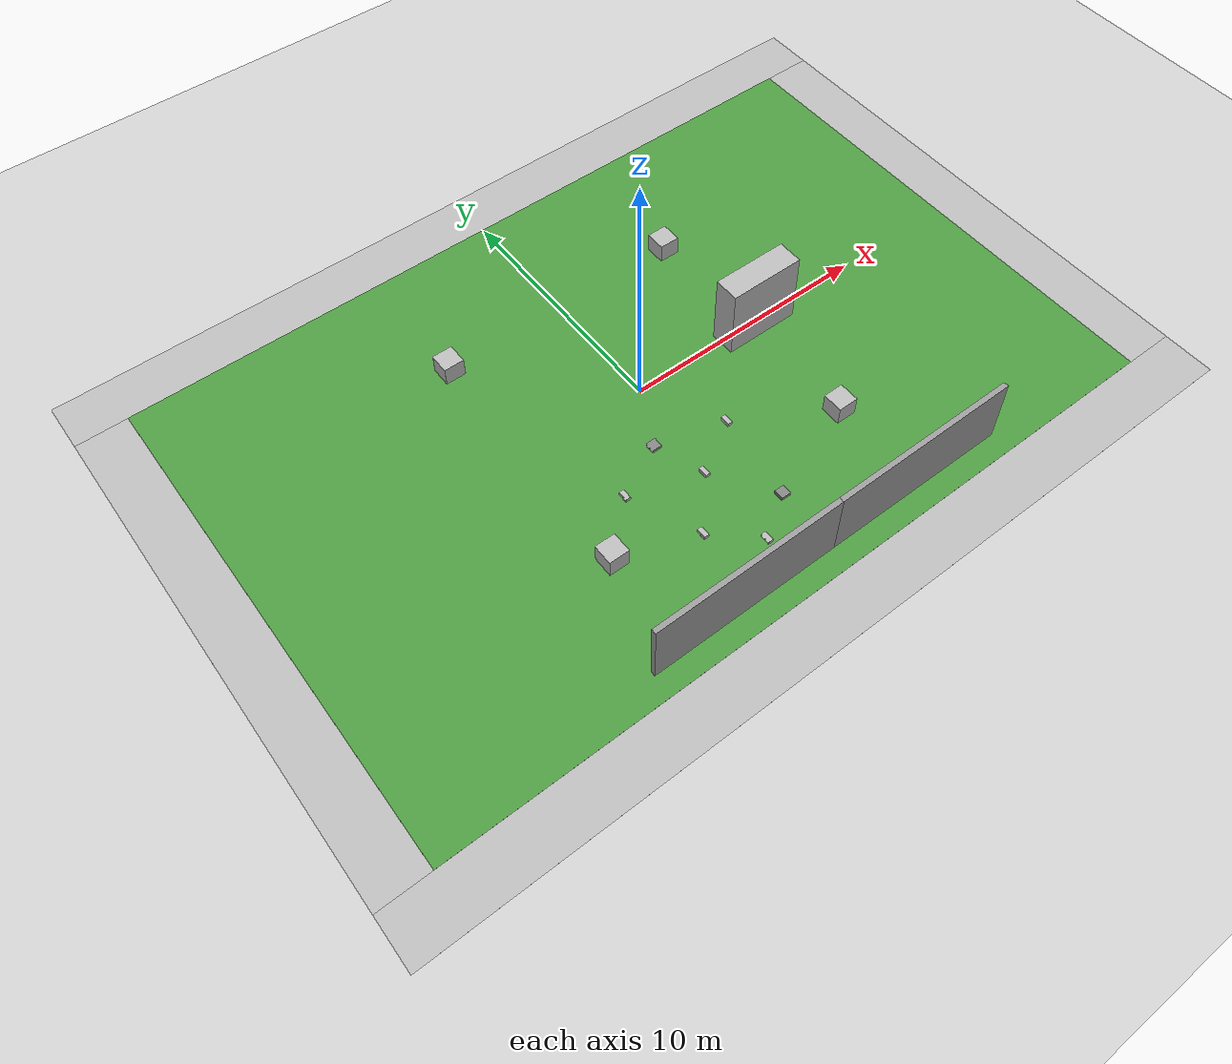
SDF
<sdf version="1.6">
 <world name="default">
  <plugin name="ardupilot_sitl_gazebo_plugin" filename="libardupilot_sitl_gazebo_plugin_rover.so">
   <UAV_MODEL>rover</UAV_MODEL>
  </plugin>
  <light name="sun" type="directional">
   <pose>0 0 10 0 -0 0</pose>
   <diffuse>0.8 0.8 0.8 1</diffuse>
   <specular>0.2 0.2 0.2 1</specular>
   <attenuation>
    <range>1000</range>
    <constant>0.9</constant>
    <linear>0.01</linear>
    <quadratic>0.001</quadratic>
   </attenuation>
   <direction>-0.5 0.1 -0.9</direction>
  </light>
  <model name="ground_plane">
   <static>1</static>
   <link name="link">
    <collision name="collision">
     <geometry><plane><normal>0 0 1</normal><size>100 100</size></plane></geometry>
     <surface><friction><ode><mu>100</mu><mu2>50</mu2></ode></friction></surface>
    </collision>
    <visual name="visual">
     <cast_shadows>0</cast_shadows>
     <geometry><plane><normal>0 0 1</normal><size>100 100</size></plane></geometry>
     <material>
      <script><uri>file://media/materials/scripts/gazebo.material</uri><name>Gazebo/Grey</name></script>
     </material>
    </visual>
   </link>
  </model>
  <gravity>0 0 -9.8</gravity>
  <magnetic_field>6e-06 2.3e-05 -4.2e-05</magnetic_field>
  <atmosphere type="adiabatic"/>
  <physics name="default_physics" default="0" type="ode">
   <max_step_size>0.001</max_step_size>
   <real_time_factor>1</real_time_factor>
   <real_time_update_rate>1000</real_time_update_rate>
  </physics>
  <scene><ambient>0.4 0.4 0.4 1</ambient><background>0.7 0.7 0.7 1</background><shadows>1</shadows></scene>
  <spherical_coordinates>
   <surface_model>EARTH_WGS84</surface_model>
   <latitude_deg>0</latitude_deg>
   <longitude_deg>0</longitude_deg>
   <elevation>0</elevation>
   <heading_deg>0</heading_deg>
  </spherical_coordinates>
  <model name="robocup_3d_field">
   <static>1</static>
   <link name="field">
    <pose>0 0 0.01 0 -0 0</pose>
    <collision name="collision">
     <geometry><plane><normal>0 0 1</normal><size>30 20</size></plane></geometry>
     <surface><friction><ode><mu>100</mu><mu2>50</mu2></ode></friction></surface>
    </collision>
    <visual name="base1">
     <pose>0 11 0.001 0 -0 0</pose>
     <cast_shadows>0</cast_shadows>
     <geometry><plane><normal>0 0 1</normal><size>34 2</size></plane></geometry>
     <material>
      <script>
       <uri>model://robocup_3Dsim_field/materials/scripts/</uri>
       <uri>model://robocup_3Dsim_field/materials/textures/</uri>
       <name>RoboCup/FieldBorder</name>
      </script>
     </material>
    </visual>
    <visual name="base2">
     <pose>0 -11 0.001 0 -0 0</pose>
     <cast_shadows>0</cast_shadows>
     <geometry><plane><normal>0 0 1</normal><size>34 2</size></plane></geometry>
     <material>
      <script>
       <uri>model://robocup_3Dsim_field/materials/scripts/</uri>
       <uri>model://robocup_3Dsim_field/materials/textures/</uri>
       <name>RoboCup/FieldBorder</name>
      </script>
     </material>
    </visual>
    <visual name="base3">
     <pose>16 0 0.001 0 -0 0</pose>
     <cast_shadows>0</cast_shadows>
     <geometry><plane><normal>0 0 1</normal><size>2 20</size></plane></geometry>
     <material>
      <script>
       <uri>model://robocup_3Dsim_field/materials/scripts/</uri>
       <uri>model://robocup_3Dsim_field/materials/textures/</uri>
       <name>RoboCup/FieldBorder</name>
      </script>
     </material>
    </visual>
    <visual name="base4">
     <pose>-16 0 0.001 0 -0 0</pose>
     <cast_shadows>0</cast_shadows>
     <geometry><plane><normal>0 0 1</normal><size>2 20</size></plane></geometry>
     <material>
      <script>
       <uri>model://robocup_3Dsim_field/materials/scripts/</uri>
       <uri>model://robocup_3Dsim_field/materials/textures/</uri>
       <name>RoboCup/FieldBorder</name>
      </script>
     </material>
    </visual>
    <visual name="carpet">
     <cast_shadows>0</cast_shadows>
     <geometry><plane><normal>0 0 1</normal><size>30 20</size></plane></geometry>
     <material>
      <script>
       <uri>model://robocup_3Dsim_field/materials/scripts/</uri>
       <uri>model://robocup_3Dsim_field/materials/textures/</uri>
       <name>RoboCup/Grass</name>
      </script>
     </material>
    </visual>
   </link>
   <pose>-0.031698 0.111229 0 0 -0 0</pose>
  </model>
  <model name="number1">
   <pose>4.9327 4.89859 0.4 0 -0 0</pose>
   <static>1</static>
   <link name="number1::link">
    <visual name="visual">
     <geometry><mesh><uri>model://number1/meshes/number.dae</uri></mesh></geometry>
     <material>
      <script>
       <uri>model://number1/materials/scripts</uri>
       <uri>model://number1/materials/textures</uri>
       <name>Number/One</name>
      </script>
     </material>
    </visual>
   </link>
  </model>
  <model name="number2">
   <pose>5.02532 -4.98398 0.4 0 -0 0</pose>
   <static>1</static>
   <link name="link">
    <visual name="visual">
     <geometry><mesh><uri>model://number1/meshes/number.dae</uri></mesh></geometry>
     <material>
      <script>
       <uri>model://number2/materials/scripts</uri>
       <uri>model://number2/materials/textures</uri>
       <name>Number/Two</name>
      </script>
     </material>
    </visual>
   </link>
  </model>
  <model name="number3">
   <pose>-4.99507 -4.96887 0.4 0 -0 0</pose>
   <static>1</static>
   <link name="link">
    <visual name="visual">
     <geometry><mesh><uri>model://number1/meshes/number.dae</uri></mesh></geometry>
     <material>
      <script>
       <uri>model://number3/materials/scripts</uri>
       <uri>model://number3/materials/textures</uri>
       <name>Number/Three</name>
      </script>
     </material>
    </visual>
   </link>
  </model>
  <model name="number4">
   <pose>-4.90041 4.89522 0.4 0 -0 0</pose>
   <static>1</static>
   <link name="link">
    <visual name="visual">
     <geometry><mesh><uri>model://number1/meshes/number.dae</uri></mesh></geometry>
     <material>
      <script>
       <uri>model://number4/materials/scripts</uri>
       <uri>model://number4/materials/textures</uri>
       <name>Number/Four</name>
      </script>
     </material>
    </visual>
   </link>
  </model>
  <model name="cinder_block_2">
   <link name="link">
    <inertial>
     <pose>0 0 0.071438 0 -0 0</pose>
     <mass>5</mass>
     <inertia>
      <ixx>0.06908</ixx>
      <ixy>0</ixy>
      <iyy>0.028705</iyy>
      <ixz>0</ixz>
      <iyz>0</iyz>
      <izz>0.073708</izz>
     </inertia>
    </inertial>
    <visual name="visual">
     <geometry><mesh><uri>model://cinder_block_2/meshes/cinder_block.dae</uri></mesh></geometry>
    </visual>
    <collision name="top">
     <pose>0 0 0.130175 0 -0 0</pose>
     <geometry><box><size>0.19368 0.396875 0.0254</size></box></geometry>
     <surface>
      <contact><ode><max_vel>0.1</max_vel><min_depth>0.001</min_depth></ode></contact>
      <friction><ode><mu>1</mu><mu2>1</mu2></ode></friction>
     </surface>
    </collision>
    <collision name="bottom">
     <pose>0 0 0.0127 0 -0 0</pose>
     <geometry><box><size>0.19368 0.396875 0.0254</size></box></geometry>
     <surface>
      <contact><ode><max_vel>0.1</max_vel><min_depth>0.001</min_depth></ode></contact>
      <friction><ode><mu>1</mu><mu2>1</mu2></ode></friction>
     </surface>
    </collision>
    <collision name="left">
     <pose>0 -0.185738 0.071438 0 -0 0</pose>
     <geometry><box><size>0.19368 0.0254 0.092075</size></box></geometry>
     <surface>
      <contact><ode><max_vel>0.1</max_vel><min_depth>0.001</min_depth></ode></contact>
      <friction><ode><mu>1</mu><mu2>1</mu2></ode></friction>
     </surface>
    </collision>
    <collision name="right">
     <pose>0 0.185738 0.071438 0 -0 0</pose>
     <geometry><box><size>0.19368 0.0254 0.092075</size></box></geometry>
     <surface>
      <contact><ode><max_vel>0.1</max_vel><min_depth>0.001</min_depth></ode></contact>
      <friction><ode><mu>1</mu><mu2>1</mu2></ode></friction>
     </surface>
    </collision>
    <collision name="middle">
     <pose>0 0 0.071438 0 -0 0</pose>
     <geometry><box><size>0.19368 0.0254 0.092075</size></box></geometry>
     <surface>
      <contact><ode><max_vel>0.1</max_vel><min_depth>0.001</min_depth></ode></contact>
      <friction><ode><mu>1</mu><mu2>1</mu2></ode></friction>
     </surface>
    </collision>
   </link>
   <pose>1.57757 -2.93393 0.009461 0 -0 0</pose>
  </model>
  <model name="brick_box_3x1x3">
   <static>1</static>
   <link name="chassis">
    <pose>0 0 1.5 0 -0 0</pose>
    <collision name="collision"><geometry><box><size>3 1 3</size></box></geometry></collision>
    <visual name="visual">
     <geometry><mesh><uri>model://brick_box_3x1x3/meshes/simple_box.dae</uri><scale>3 1 3</scale></mesh></geometry>
     <material>
      <script>
       <uri>model://brick_box_3x1x3/materials/scripts</uri>
       <uri>model://brick_box_3x1x3/materials/textures</uri>
       <name>BrickBox/Diffuse</name>
      </script>
     </material>
    </visual>
   </link>
   <pose>5.22662 -0.125181 0 0 -0 0</pose>
  </model>
  <model name="cinder_block_2_0">
   <link name="link">
    <inertial>
     <pose>0 0 0.071438 0 -0 0</pose>
     <mass>5</mass>
     <inertia>
      <ixx>0.06908</ixx>
      <ixy>0</ixy>
      <iyy>0.028705</iyy>
      <ixz>0</ixz>
      <iyz>0</iyz>
      <izz>0.073708</izz>
     </inertia>
    </inertial>
    <visual name="visual">
     <geometry><mesh><uri>model://cinder_block_2/meshes/cinder_block.dae</uri></mesh></geometry>
    </visual>
    <collision name="top">
     <pose>0 0 0.130175 0 -0 0</pose>
     <geometry><box><size>0.19368 0.396875 0.0254</size></box></geometry>
     <surface>
      <contact><ode><max_vel>0.1</max_vel><min_depth>0.001</min_depth></ode></contact>
      <friction><ode><mu>1</mu><mu2>1</mu2></ode></friction>
     </surface>
    </collision>
    <collision name="bottom">
     <pose>0 0 0.0127 0 -0 0</pose>
     <geometry><box><size>0.19368 0.396875 0.0254</size></box></geometry>
     <surface>
      <contact><ode><max_vel>0.1</max_vel><min_depth>0.001</min_depth></ode></contact>
      <friction><ode><mu>1</mu><mu2>1</mu2></ode></friction>
     </surface>
    </collision>
    <collision name="left">
     <pose>0 -0.185738 0.071438 0 -0 0</pose>
     <geometry><box><size>0.19368 0.0254 0.092075</size></box></geometry>
     <surface>
      <contact><ode><max_vel>0.1</max_vel><min_depth>0.001</min_depth></ode></contact>
      <friction><ode><mu>1</mu><mu2>1</mu2></ode></friction>
     </surface>
    </collision>
    <collision name="right">
     <pose>0 0.185738 0.071438 0 -0 0</pose>
     <geometry><box><size>0.19368 0.0254 0.092075</size></box></geometry>
     <surface>
      <contact><ode><max_vel>0.1</max_vel><min_depth>0.001</min_depth></ode></contact>
      <friction><ode><mu>1</mu><mu2>1</mu2></ode></friction>
     </surface>
    </collision>
    <collision name="middle">
     <pose>0 0 0.071438 0 -0 0</pose>
     <geometry><box><size>0.19368 0.0254 0.092075</size></box></geometry>
     <surface>
      <contact><ode><max_vel>0.1</max_vel><min_depth>0.001</min_depth></ode></contact>
      <friction><ode><mu>1</mu><mu2>1</mu2></ode></friction>
     </surface>
    </collision>
   </link>
   <pose>-0.417072 -4.12952 0.009461 0 -0 0</pose>
  </model>
  <model name="cinder_block_wide">
   <link name="link">
    <inertial>
     <pose>0 0 0.071438 0 -0 0</pose>
     <mass>5</mass>
     <inertia>
      <ixx>0.0681466</ixx>
      <ixy>0</ixy>
      <iyy>0.0681466</iyy>
      <ixz>0</ixz>
      <iyz>0</iyz>
      <izz>0.124808</izz>
     </inertia>
    </inertial>
    <visual name="visual">
     <geometry><mesh><uri>model://cinder_block_wide/meshes/cinder_block_wide.dae</uri></mesh></geometry>
    </visual>
    <collision name="top">
     <pose>0 0 0.130175 0 -0 0</pose>
     <geometry><box><size>0.387354 0.387354 0.0254</size></box></geometry>
     <surface>
      <contact><ode><max_vel>0.1</max_vel><min_depth>0.001</min_depth></ode></contact>
      <friction><ode><mu>1</mu><mu2>1</mu2></ode></friction>
     </surface>
    </collision>
    <collision name="bottom">
     <pose>0 0 0.0127 0 -0 0</pose>
     <geometry><box><size>0.387354 0.387354 0.0254</size></box></geometry>
     <surface>
      <contact><ode><max_vel>0.1</max_vel><min_depth>0.001</min_depth></ode></contact>
      <friction><ode><mu>1</mu><mu2>1</mu2></ode></friction>
     </surface>
    </collision>
    <collision name="left">
     <pose>0 -0.183355 0.071438 0 -0 0</pose>
     <geometry><box><size>0.387354 0.020643 0.092075</size></box></geometry>
     <surface>
      <contact><ode><max_vel>0.1</max_vel><min_depth>0.001</min_depth></ode></contact>
      <friction><ode><mu>1</mu><mu2>1</mu2></ode></friction>
     </surface>
    </collision>
    <collision name="right">
     <pose>0 0.183355 0.071438 0 -0 0</pose>
     <geometry><box><size>0.387354 0.020643 0.092075</size></box></geometry>
     <surface>
      <contact><ode><max_vel>0.1</max_vel><min_depth>0.001</min_depth></ode></contact>
      <friction><ode><mu>1</mu><mu2>1</mu2></ode></friction>
     </surface>
    </collision>
    <collision name="middle">
     <pose>0 0 0.071438 0 -0 0</pose>
     <geometry><box><size>0.387354 0.0254 0.092075</size></box></geometry>
     <surface>
      <contact><ode><max_vel>0.1</max_vel><min_depth>0.001</min_depth></ode></contact>
      <friction><ode><mu>1</mu><mu2>1</mu2></ode></friction>
     </surface>
    </collision>
   </link>
   <pose>1.13099 -6.41543 0.009461 0 -0 0</pose>
  </model>
  <model name="cinder_block_2_1">
   <link name="link">
    <inertial>
     <pose>0 0 0.071438 0 -0 0</pose>
     <mass>5</mass>
     <inertia>
      <ixx>0.06908</ixx>
      <ixy>0</ixy>
      <iyy>0.028705</iyy>
      <ixz>0</ixz>
      <iyz>0</iyz>
      <izz>0.073708</izz>
     </inertia>
    </inertial>
    <visual name="visual">
     <geometry><mesh><uri>model://cinder_block_2/meshes/cinder_block.dae</uri></mesh></geometry>
    </visual>
    <collision name="top">
     <pose>0 0 0.130175 0 -0 0</pose>
     <geometry><box><size>0.19368 0.396875 0.0254</size></box></geometry>
     <surface>
      <contact><ode><max_vel>0.1</max_vel><min_depth>0.001</min_depth></ode></contact>
      <friction><ode><mu>1</mu><mu2>1</mu2></ode></friction>
     </surface>
    </collision>
    <collision name="bottom">
     <pose>0 0 0.0127 0 -0 0</pose>
     <geometry><box><size>0.19368 0.396875 0.0254</size></box></geometry>
     <surface>
      <contact><ode><max_vel>0.1</max_vel><min_depth>0.001</min_depth></ode></contact>
      <friction><ode><mu>1</mu><mu2>1</mu2></ode></friction>
     </surface>
    </collision>
    <collision name="left">
     <pose>0 -0.185738 0.071438 0 -0 0</pose>
     <geometry><box><size>0.19368 0.0254 0.092075</size></box></geometry>
     <surface>
      <contact><ode><max_vel>0.1</max_vel><min_depth>0.001</min_depth></ode></contact>
      <friction><ode><mu>1</mu><mu2>1</mu2></ode></friction>
     </surface>
    </collision>
    <collision name="right">
     <pose>0 0.185738 0.071438 0 -0 0</pose>
     <geometry><box><size>0.19368 0.0254 0.092075</size></box></geometry>
     <surface>
      <contact><ode><max_vel>0.1</max_vel><min_depth>0.001</min_depth></ode></contact>
      <friction><ode><mu>1</mu><mu2>1</mu2></ode></friction>
     </surface>
    </collision>
    <collision name="middle">
     <pose>0 0 0.071438 0 -0 0</pose>
     <geometry><box><size>0.19368 0.0254 0.092075</size></box></geometry>
     <surface>
      <contact><ode><max_vel>0.1</max_vel><min_depth>0.001</min_depth></ode></contact>
      <friction><ode><mu>1</mu><mu2>1</mu2></ode></friction>
     </surface>
    </collision>
   </link>
   <pose>-2.0106 -5.99393 0.009461 0 -0 0</pose>
  </model>
  <model name="cinder_block_wide_0">
   <link name="link">
    <inertial>
     <pose>0 0 0.071438 0 -0 0</pose>
     <mass>5</mass>
     <inertia>
      <ixx>0.0681466</ixx>
      <ixy>0</ixy>
      <iyy>0.0681466</iyy>
      <ixz>0</ixz>
      <iyz>0</iyz>
      <izz>0.124808</izz>
     </inertia>
    </inertial>
    <visual name="visual">
     <geometry><mesh><uri>model://cinder_block_wide/meshes/cinder_block_wide.dae</uri></mesh></geometry>
    </visual>
    <collision name="top">
     <pose>0 0 0.130175 0 -0 0</pose>
     <geometry><box><size>0.387354 0.387354 0.0254</size></box></geometry>
     <surface>
      <contact><ode><max_vel>0.1</max_vel><min_depth>0.001</min_depth></ode></contact>
      <friction><ode><mu>1</mu><mu2>1</mu2></ode></friction>
     </surface>
    </collision>
    <collision name="bottom">
     <pose>0 0 0.0127 0 -0 0</pose>
     <geometry><box><size>0.387354 0.387354 0.0254</size></box></geometry>
     <surface>
      <contact><ode><max_vel>0.1</max_vel><min_depth>0.001</min_depth></ode></contact>
      <friction><ode><mu>1</mu><mu2>1</mu2></ode></friction>
     </surface>
    </collision>
    <collision name="left">
     <pose>0 -0.183355 0.071438 0 -0 0</pose>
     <geometry><box><size>0.387354 0.020643 0.092075</size></box></geometry>
     <surface>
      <contact><ode><max_vel>0.1</max_vel><min_depth>0.001</min_depth></ode></contact>
      <friction><ode><mu>1</mu><mu2>1</mu2></ode></friction>
     </surface>
    </collision>
    <collision name="right">
     <pose>0 0.183355 0.071438 0 -0 0</pose>
     <geometry><box><size>0.387354 0.020643 0.092075</size></box></geometry>
     <surface>
      <contact><ode><max_vel>0.1</max_vel><min_depth>0.001</min_depth></ode></contact>
      <friction><ode><mu>1</mu><mu2>1</mu2></ode></friction>
     </surface>
    </collision>
    <collision name="middle">
     <pose>0 0 0.071438 0 -0 0</pose>
     <geometry><box><size>0.387354 0.0254 0.092075</size></box></geometry>
     <surface>
      <contact><ode><max_vel>0.1</max_vel><min_depth>0.001</min_depth></ode></contact>
      <friction><ode><mu>1</mu><mu2>1</mu2></ode></friction>
     </surface>
    </collision>
   </link>
   <pose>-1.11074 -2.21852 0.009461 0 -0 0</pose>
  </model>
  <model name="cinder_block_2_2">
   <link name="link">
    <inertial>
     <pose>0 0 0.071438 0 -0 0</pose>
     <mass>5</mass>
     <inertia>
      <ixx>0.06908</ixx>
      <ixy>0</ixy>
      <iyy>0.028705</iyy>
      <ixz>0</ixz>
      <iyz>0</iyz>
      <izz>0.073708</izz>
     </inertia>
    </inertial>
    <visual name="visual">
     <geometry><mesh><uri>model://cinder_block_2/meshes/cinder_block.dae</uri></mesh></geometry>
    </visual>
    <collision name="top">
     <pose>0 0 0.130175 0 -0 0</pose>
     <geometry><box><size>0.19368 0.396875 0.0254</size></box></geometry>
     <surface>
      <contact><ode><max_vel>0.1</max_vel><min_depth>0.001</min_depth></ode></contact>
      <friction><ode><mu>1</mu><mu2>1</mu2></ode></friction>
     </surface>
    </collision>
    <collision name="bottom">
     <pose>0 0 0.0127 0 -0 0</pose>
     <geometry><box><size>0.19368 0.396875 0.0254</size></box></geometry>
     <surface>
      <contact><ode><max_vel>0.1</max_vel><min_depth>0.001</min_depth></ode></contact>
      <friction><ode><mu>1</mu><mu2>1</mu2></ode></friction>
     </surface>
    </collision>
    <collision name="left">
     <pose>0 -0.185738 0.071438 0 -0 0</pose>
     <geometry><box><size>0.19368 0.0254 0.092075</size></box></geometry>
     <surface>
      <contact><ode><max_vel>0.1</max_vel><min_depth>0.001</min_depth></ode></contact>
      <friction><ode><mu>1</mu><mu2>1</mu2></ode></friction>
     </surface>
    </collision>
    <collision name="right">
     <pose>0 0.185738 0.071438 0 -0 0</pose>
     <geometry><box><size>0.19368 0.0254 0.092075</size></box></geometry>
     <surface>
      <contact><ode><max_vel>0.1</max_vel><min_depth>0.001</min_depth></ode></contact>
      <friction><ode><mu>1</mu><mu2>1</mu2></ode></friction>
     </surface>
    </collision>
    <collision name="middle">
     <pose>0 0 0.071438 0 -0 0</pose>
     <geometry><box><size>0.19368 0.0254 0.092075</size></box></geometry>
     <surface>
      <contact><ode><max_vel>0.1</max_vel><min_depth>0.001</min_depth></ode></contact>
      <friction><ode><mu>1</mu><mu2>1</mu2></ode></friction>
     </surface>
    </collision>
   </link>
   <pose>-3.16903 -3.24494 0.009461 0 -0 0</pose>
  </model>
  <model name="grey_wall">
   <static>1</static>
   <link name="link">
    <pose>0 0 1.4 0 -0 0</pose>
    <collision name="collision"><geometry><box><size>7.5 0.2 2.8</size></box></geometry></collision>
    <visual name="visual">
     <cast_shadows>0</cast_shadows>
     <geometry><box><size>7.5 0.2 2.8</size></box></geometry>
     <material>
      <script>
       <uri>model://grey_wall/materials/scripts</uri>
       <uri>model://grey_wall/materials/textures</uri>
       <name>vrc/grey_wall</name>
      </script>
     </material>
    </visual>
   </link>
   <pose>4.79275 -8.93509 0 0 -0 0</pose>
  </model>
  <model name="grey_wall_0">
   <static>1</static>
   <link name="link">
    <pose>0 0 1.4 0 -0 0</pose>
    <collision name="collision"><geometry><box><size>7.5 0.2 2.8</size></box></geometry></collision>
    <visual name="visual">
     <cast_shadows>0</cast_shadows>
     <geometry><box><size>7.5 0.2 2.8</size></box></geometry>
     <material>
      <script>
       <uri>model://grey_wall/materials/scripts</uri>
       <uri>model://grey_wall/materials/textures</uri>
       <name>vrc/grey_wall</name>
      </script>
     </material>
    </visual>
   </link>
   <pose>-2.68152 -8.93548 0 0 -0 0</pose>
  </model>
  <model name="cinder_block_2_3">
   <link name="link">
    <inertial>
     <pose>0 0 0.071438 0 -0 0</pose>
     <mass>5</mass>
     <inertia>
      <ixx>0.06908</ixx>
      <ixy>0</ixy>
      <iyy>0.028705</iyy>
      <ixz>0</ixz>
      <iyz>0</iyz>
      <izz>0.073708</izz>
     </inertia>
    </inertial>
    <visual name="visual">
     <geometry><mesh><uri>model://cinder_block_2/meshes/cinder_block.dae</uri></mesh></geometry>
    </visual>
    <collision name="top">
     <pose>0 0 0.130175 0 -0 0</pose>
     <geometry><box><size>0.19368 0.396875 0.0254</size></box></geometry>
     <surface>
      <contact><ode><max_vel>0.1</max_vel><min_depth>0.001</min_depth></ode></contact>
      <friction><ode><mu>1</mu><mu2>1</mu2></ode></friction>
     </surface>
    </collision>
    <collision name="bottom">
     <pose>0 0 0.0127 0 -0 0</pose>
     <geometry><box><size>0.19368 0.396875 0.0254</size></box></geometry>
     <surface>
      <contact><ode><max_vel>0.1</max_vel><min_depth>0.001</min_depth></ode></contact>
      <friction><ode><mu>1</mu><mu2>1</mu2></ode></friction>
     </surface>
    </collision>
    <collision name="left">
     <pose>0 -0.185738 0.071438 0 -0 0</pose>
     <geometry><box><size>0.19368 0.0254 0.092075</size></box></geometry>
     <surface>
      <contact><ode><max_vel>0.1</max_vel><min_depth>0.001</min_depth></ode></contact>
      <friction><ode><mu>1</mu><mu2>1</mu2></ode></friction>
     </surface>
    </collision>
    <collision name="right">
     <pose>0 0.185738 0.071438 0 -0 0</pose>
     <geometry><box><size>0.19368 0.0254 0.092075</size></box></geometry>
     <surface>
      <contact><ode><max_vel>0.1</max_vel><min_depth>0.001</min_depth></ode></contact>
      <friction><ode><mu>1</mu><mu2>1</mu2></ode></friction>
     </surface>
    </collision>
    <collision name="middle">
     <pose>0 0 0.071438 0 -0 0</pose>
     <geometry><box><size>0.19368 0.0254 0.092075</size></box></geometry>
     <surface>
      <contact><ode><max_vel>0.1</max_vel><min_depth>0.001</min_depth></ode></contact>
      <friction><ode><mu>1</mu><mu2>1</mu2></ode></friction>
     </surface>
    </collision>
   </link>
   <pose>-0.451509 -7.43313 0.009461 0 -0 0</pose>
  </model>
 </world>
</sdf>
